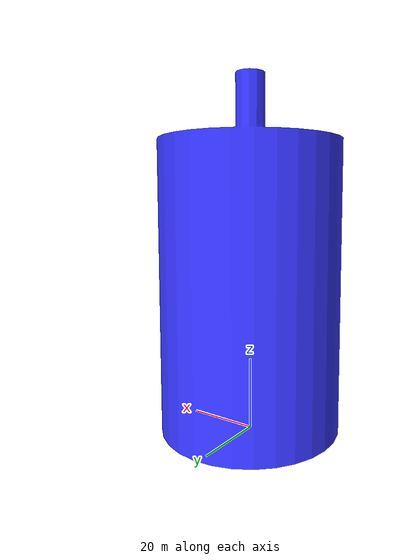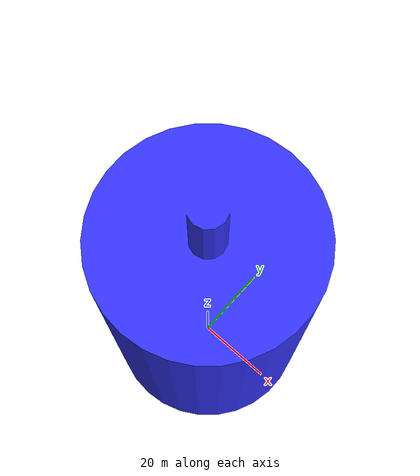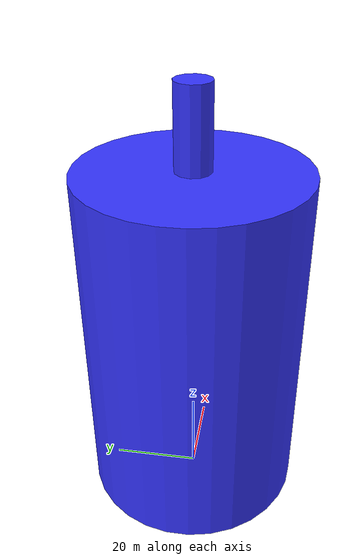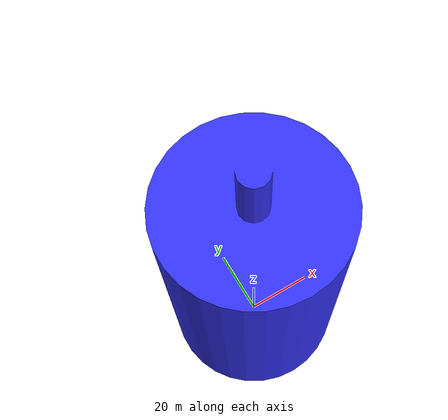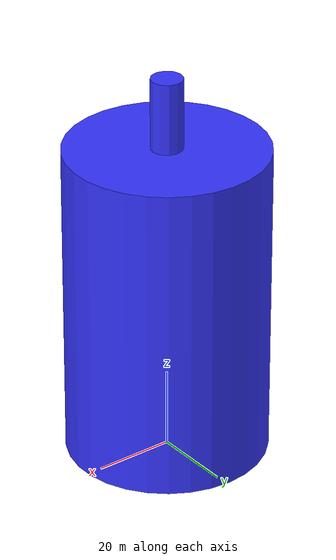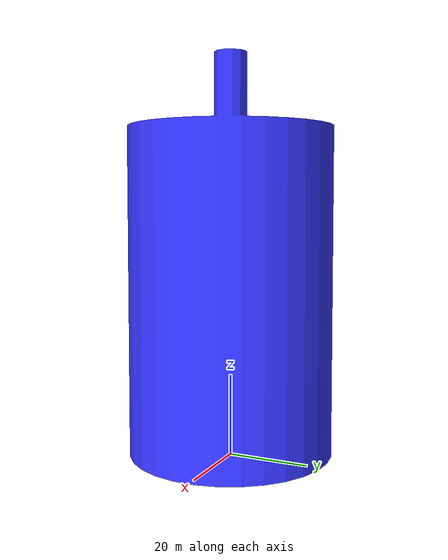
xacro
<?xml version='1.0' encoding='utf-8'?>
<robot xmlns:xacro="http://www.ros.org/wiki/xacro" name="dodo">

    <link name="world"></link>

    <joint name="base_joint" type="fixed">
        <origin xyz="0 0 1" rpy="0 0 0"/>
        <parent link="world"/>
        <child link="base_link"/>
    </joint>

    <link name="base_link">
        <visual>
            <orlgin xyz="0 0 2" rpy="0 0 0"/>
            <geometry>
                <box size="0.05 0.05 0.15"/>
            </geometry>
            <material name="green">
                <color rgba="0.2 1 0.2 1"/>
            </material>
        </visual>

        <collision>
            <origin xyz="0 0 0" rpy="0 0 0"/>
            <geometry>
                <box size="0.5 0.5 0.05"/>
            </geometry>
        </collision>

        <inertial>
            <origin xyz="0 0 0.025" rpy="0 0 0"/>
            <mass value="12"/>
            <inertia ixx="2.26" ixy="0.0" ixz="0.0" iyy="6.26" iyz="0.0" izz="8.5"/>
        </inertial>
    </link>

    <joint name="motor_joint" type="fixed">
        <origin xyz="0 0 0.1" rpy="${3.14152*0.5} 0 0"/>
        <parent link="base_link"/>
        <child link="motor_link"/>
    </joint>

    <xacro:property name="description_package" value="motor_control"/>
    <link name="motor_link">
        <inertial>
            <origin xyz="0 0 0.04" ryp="0 0 0"/>
            <mass value="1.12"/>
            <inertia ixx="0.0078" ixy="0" ixz="0" iyy="0.0035" iyz="0" izz="0.0078"/>
        </inertial>

        <visual>
            <orlgin xyz="0 0 0" rpy="0 0 0"/>
            <geometry>
                <mesh filename="file://$(find ${description_package})/meshes/motor.stl"/>
            </geometry>
            <material name="blue">
                <color rgba="0.2 0.2 1 1"/>
            </material>
        </visual>

        <collision>
            <origin xyz="0 0 0" rpy="0 0 0"/>
            <geometry>
                <cylinder length="0.08" radius="0.05"/>
            </geometry>
        </collision>
    </link>

</robot>
